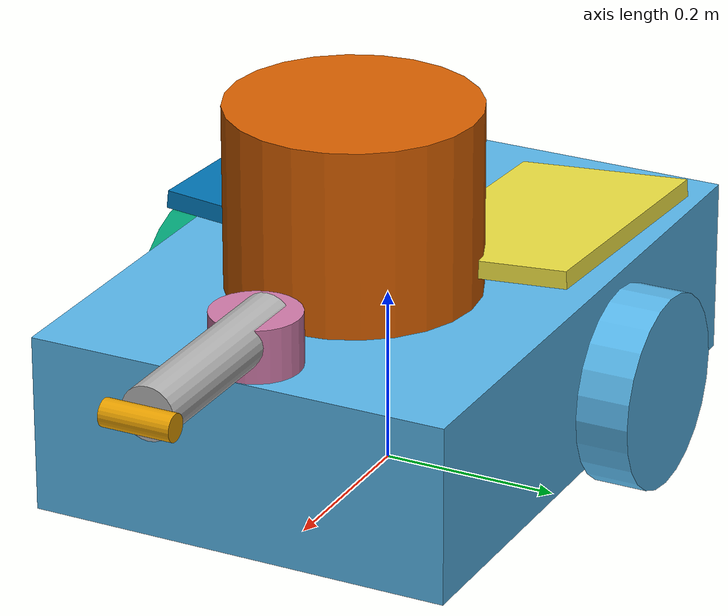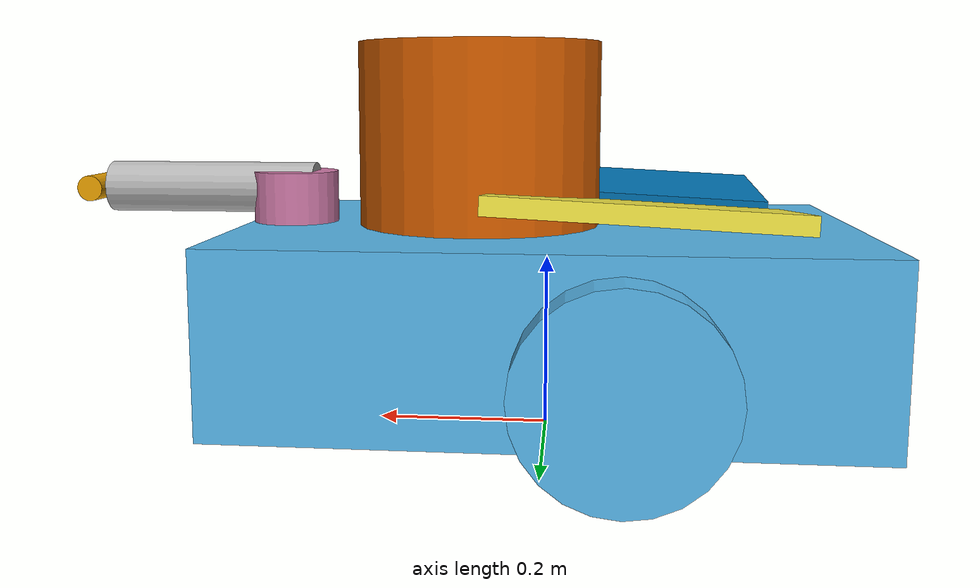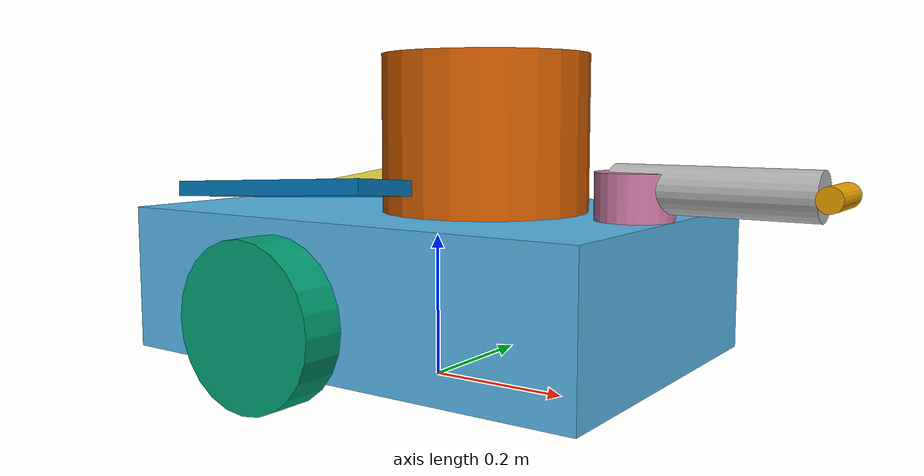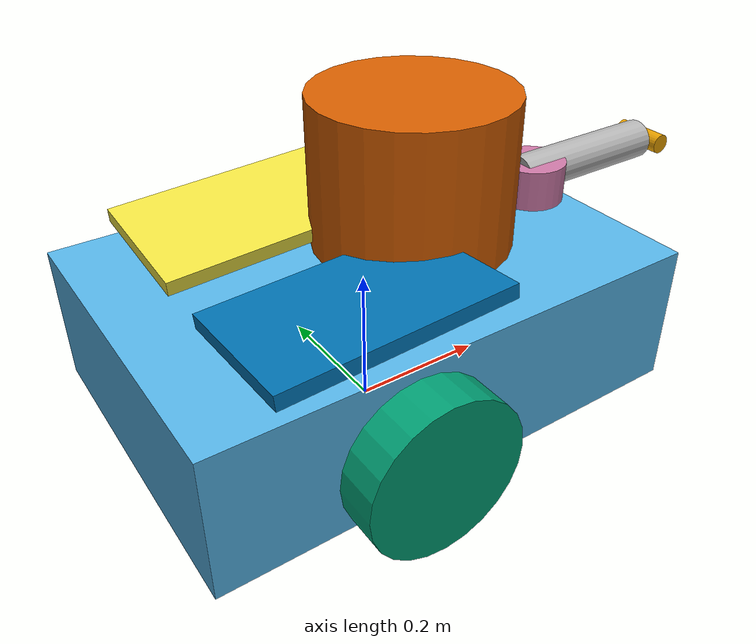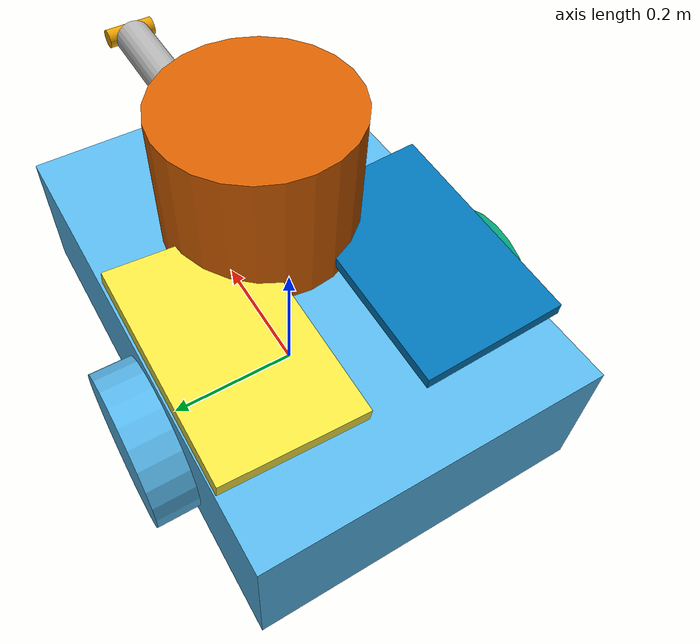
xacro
<?xml version="1.0"?>
<robot name="mobile_treatment_rover" xmlns:xacro="http://www.ros.org/wiki/xacro">

  <!-- Base Footprint Ground Projection -->
  <link name="base_footprint"/>

  <joint name="base_joint" type="fixed">
    <parent link="base_footprint"/>
    <child link="base_link"/>
    <origin xyz="0 0 0.14" rpy="0 0 0"/>
  </joint>

  <!-- ================= 1. CHASSIS BODY (Deep Metallic Blue) ================= -->
  <link name="base_link">
    <visual>
      <geometry><box size="0.70 0.48 0.20"/></geometry>
    </visual>
    <collision>
      <geometry><box size="0.70 0.48 0.20"/></geometry>
    </collision>
    <inertial>
      <mass value="12.0"/>
      <inertia ixx="0.25" ixy="0" ixz="0" iyy="0.55" iyz="0" izz="0.70"/>
    </inertial>
  </link>
  <gazebo reference="base_link">
    <visual><material><ambient>0.08 0.18 0.38 1</ambient><diffuse>0.1 0.25 0.55 1</diffuse></material></visual>
  </gazebo>

  <!-- ================= 2. POWER SUBSYSTEM (Solar & Battery) ================= -->
  <link name="battery_pack">
    <visual><geometry><box size="0.28 0.22 0.10"/></geometry></visual>
  </link>
  <joint name="battery_joint" type="fixed">
    <parent link="base_link"/>
    <child link="battery_pack"/>
    <origin xyz="-0.15 0.0 -0.02" rpy="0 0 0"/>
  </joint>
  <gazebo reference="battery_pack">
    <visual><material><ambient>0.15 0.15 0.15 1</ambient><diffuse>0.2 0.2 0.2 1</diffuse></material></visual>
  </gazebo>

  <link name="solar_panel_left">
    <visual><geometry><box size="0.32 0.20 0.02"/></geometry></visual>
  </link>
  <joint name="solar_left_joint" type="fixed">
    <parent link="base_link"/>
    <child link="solar_panel_left"/>
    <origin xyz="-0.10 0.14 0.13" rpy="0.08 -0.05 0"/>
  </joint>
  <gazebo reference="solar_panel_left">
    <visual><material><ambient>0.05 0.1 0.25 1</ambient><diffuse>0.05 0.15 0.4 1</diffuse></material></visual>
  </gazebo>

  <link name="solar_panel_right">
    <visual><geometry><box size="0.32 0.20 0.02"/></geometry></visual>
  </link>
  <joint name="solar_right_joint" type="fixed">
    <parent link="base_link"/>
    <child link="solar_panel_right"/>
    <origin xyz="-0.10 -0.14 0.13" rpy="-0.08 -0.05 0"/>
  </joint>
  <gazebo reference="solar_panel_right">
    <visual><material><ambient>0.05 0.1 0.25 1</ambient><diffuse>0.05 0.15 0.4 1</diffuse></material></visual>
  </gazebo>

  <!-- ================= 3. WATER TREATMENT ASSEMBLIES ================= -->
  <link name="water_tank">
    <visual><geometry><cylinder radius="0.14" length="0.22"/></geometry></visual>
  </link>
  <joint name="tank_joint" type="fixed">
    <parent link="base_link"/>
    <child link="water_tank"/>
    <origin xyz="0.08 0.0 0.20" rpy="0 0 0"/>
  </joint>
  <gazebo reference="water_tank">
    <visual><material><ambient>0.0 0.7 0.85 0.85</ambient><diffuse>0.0 0.8 0.95 0.85</diffuse></material></visual>
  </gazebo>

  <!-- ================= 4. EXTENDABLE WATER DISPENSING ARM ================= -->
  <!-- Base Turret Mounting Socket -->
  <link name="arm_base_turret">
    <visual><geometry><cylinder radius="0.05" length="0.08"/></geometry></visual>
  </link>
  <joint name="arm_base_joint" type="fixed">
    <parent link="base_link"/>
    <child link="arm_base_turret"/>
    <origin xyz="0.30 0.0 0.12" rpy="0 0 0"/>
  </joint>
  <gazebo reference="arm_base_turret">
    <visual><material><ambient>0.2 0.2 0.2 1</ambient><diffuse>0.3 0.3 0.3 1</diffuse></material></visual>
  </gazebo>

  <!-- Stage 1 Telescopic Extendable Cylinder -->
  <link name="arm_stage_1">
    <visual><geometry><cylinder radius="0.03" length="0.25"/></geometry></visual>
    <inertial><mass value="0.2"/><inertia ixx="0.0001" ixy="0" ixz="0" iyy="0.0001" iyz="0" izz="0.0001"/></inertial>
  </link>
  <joint name="arm_extension_joint" type="prismatic">
    <parent link="arm_base_turret"/>
    <child link="arm_stage_1"/>
    <origin xyz="0.10 0.0 0.02" rpy="0 1.5708 0"/>
    <axis xyz="0 0 1"/>
    <limit lower="0.0" upper="0.30" effort="10.0" velocity="0.2"/>
  </joint>
  <gazebo reference="arm_stage_1">
    <visual><material><ambient>0.8 0.8 0.8 1</ambient><diffuse>0.9 0.9 0.9 1</diffuse></material></visual>
  </gazebo>

  <!-- End-Effector Dispensing Nozzle -->
  <link name="dispensing_nozzle">
    <visual><geometry><cylinder radius="0.015" length="0.08"/></geometry></visual>
  </link>
  <joint name="nozzle_joint" type="fixed">
    <parent link="arm_stage_1"/>
    <child link="dispensing_nozzle"/>
    <origin xyz="0.0 0.0 0.14" rpy="1.5708 0 0"/>
  </joint>
  <gazebo reference="dispensing_nozzle">
    <visual><material><ambient>0.9 0.5 0.0 1</ambient><diffuse>1.0 0.6 0.0 1</diffuse></material></visual>
  </gazebo>

  <!-- ================= 5. OFF-ROAD DRIVE WHEELS ================= -->
  <link name="left_wheel">
    <visual><geometry><cylinder radius="0.11" length="0.06"/></geometry></visual>
    <collision><geometry><cylinder radius="0.11" length="0.06"/></geometry></collision>
    <inertial><mass value="0.8"/><inertia ixx="0.002" ixy="0" ixz="0" iyy="0.002" iyz="0" izz="0.002"/></inertial>
  </link>
  <joint name="left_wheel_joint" type="continuous">
    <parent link="base_link"/>
    <child link="left_wheel"/>
    <origin xyz="-0.08 0.27 -0.03" rpy="-1.5708 0 0"/>
    <axis xyz="0 0 1"/>
  </joint>

  <link name="right_wheel">
    <visual><geometry><cylinder radius="0.11" length="0.06"/></geometry></visual>
    <collision><geometry><cylinder radius="0.11" length="0.06"/></geometry></collision>
    <inertial><mass value="0.8"/><inertia ixx="0.002" ixy="0" ixz="0" iyy="0.002" iyz="0" izz="0.002"/></inertial>
  </link>
  <joint name="right_wheel_joint" type="continuous">
    <parent link="base_link"/>
    <child link="right_wheel"/>
    <origin xyz="-0.08 -0.27 -0.03" rpy="-1.5708 0 0"/>
    <axis xyz="0 0 1"/>
  </joint>

  <link name="caster_wheel">
    <visual><geometry><sphere radius="0.08"/></geometry></visual>
    <collision><geometry><sphere radius="0.08"/></geometry></collision>
    <inertial><mass value="0.3"/><inertia ixx="0.0005" ixy="0" ixz="0" iyy="0.0005" iyz="0" izz="0.0005"/></inertial>
  </link>
  <joint name="caster_joint" type="fixed">
    <parent link="base_link"/>
    <child link="caster_wheel"/>
    <origin xyz="0.24 0.0 -0.06" rpy="0 0 0"/>
  </joint>
  <gazebo reference="caster_wheel"><mu1>0.001</mu1><mu2>0.001</mu2></gazebo>

  <!-- Differential Drive Plugin -->
  <gazebo>
    <plugin filename="gz-sim-diff-drive-system" name="gz::sim::systems::DiffDrive">
      <left_joint>left_wheel_joint</left_joint>
      <right_joint>right_wheel_joint</right_joint>
      <wheel_separation>0.54</wheel_separation>
      <wheel_radius>0.11</wheel_radius>
      <topic>/cmd_vel</topic>
      <odom_topic>/odom</odom_topic>
      <frame_id>odom</frame_id>
      <child_frame_id>base_footprint</child_frame_id>
    </plugin>
  </gazebo>

</robot>
